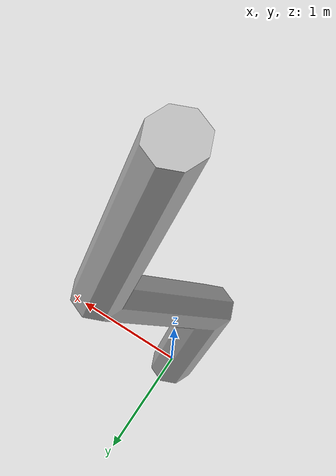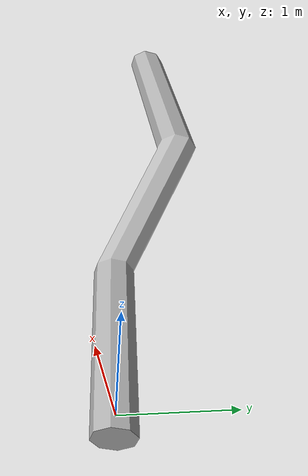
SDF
<?xml version='1.0'?>
<sdf version="1.4">
  <model name="park_tree_3">
    <static>true</static>
    <link name="link">
      <collision name="collision">
        <geometry>
          <mesh>
            <uri>model://park_tree_3/meshes/collision.dae</uri>
          </mesh>
        </geometry>
      </collision>
      <visual name="visual">
        <geometry>
          <mesh>
            <uri>model://park_tree_3/meshes/park_tree_3.dae</uri>
          </mesh>
        </geometry>
      </visual>
    </link>
  </model>
</sdf>
